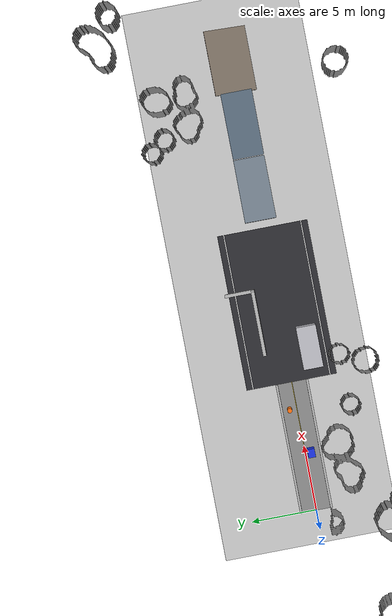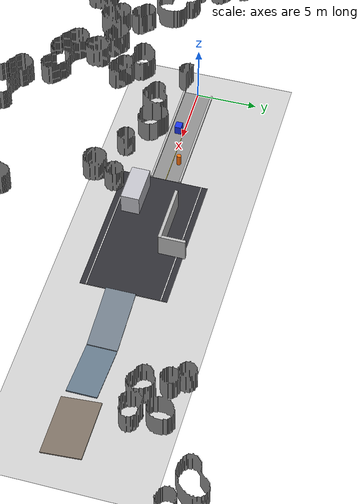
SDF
<sdf version="1.6">
 <world name="wheelchair_rc_scenarios">
  <include><uri>model://sun</uri></include>
  <include><uri>model://ground_plane</uri></include>
  <include><uri>model://hanyang_aegimun_occupancy_walls</uri></include>
  <physics name="deterministic_ode" type="ode">
   <max_step_size>0.001</max_step_size>
   <real_time_update_rate>1000</real_time_update_rate>
   <real_time_factor>1.0</real_time_factor>
   <ode><solver><type>quick</type><iters>100</iters><sor>1.0</sor></solver></ode>
  </physics>
  <model name="ground_truth_narrow_sidewalk">
   <static>true</static>
   <pose>5 0 0.025 0 0 0</pose>
   <link name="link">
    <collision name="collision"><geometry><box><size>10 2.2 0.05</size></box></geometry></collision>
    <visual name="visual">
     <geometry><box><size>10 2.2 0.05</size></box></geometry>
     <material><diffuse>0.55 0.55 0.55 1</diffuse></material>
    </visual>
   </link>
  </model>
  <model name="ground_truth_sidewalk_center_marking">
   <static>true</static>
   <pose>5 0 0.056 0 0 0</pose>
   <link name="link">
    <visual name="visual">
     <geometry><box><size>10 0.04 0.01</size></box></geometry>
     <material><diffuse>1 0.85 0.1 1</diffuse></material>
    </visual>
   </link>
  </model>
  <model name="ground_truth_curb_north">
   <static>true</static>
   <pose>5 1.18 0.10 0 0 0</pose>
   <link name="link">
    <collision name="collision"><geometry><box><size>10 0.16 0.20</size></box></geometry></collision>
    <visual name="visual"><geometry><box><size>10 0.16 0.20</size></box></geometry></visual>
   </link>
  </model>
  <model name="ground_truth_curb_south">
   <static>true</static>
   <pose>5 -1.18 0.10 0 0 0</pose>
   <link name="link">
    <collision name="collision"><geometry><box><size>10 0.16 0.20</size></box></geometry></collision>
    <visual name="visual"><geometry><box><size>10 0.16 0.20</size></box></geometry></visual>
   </link>
  </model>
  <model name="ground_truth_road_free_space">
   <static>true</static>
   <pose>16 0 0.015 0 0 0</pose>
   <link name="link">
    <collision name="collision"><geometry><box><size>12 7 0.03</size></box></geometry></collision>
    <visual name="visual">
     <geometry><box><size>12 7 0.03</size></box></geometry>
     <material><diffuse>0.18 0.18 0.20 1</diffuse></material>
    </visual>
   </link>
  </model>
  <model name="ground_truth_road_edge_north">
   <static>true</static>
   <pose>16 3.0 0.035 0 0 0</pose>
   <link name="link">
    <visual name="visual">
     <geometry><box><size>12 0.08 0.015</size></box></geometry>
     <material><diffuse>1 1 1 1</diffuse></material>
    </visual>
   </link>
  </model>
  <model name="ground_truth_road_edge_south">
   <static>true</static>
   <pose>16 -3.0 0.035 0 0 0</pose>
   <link name="link">
    <visual name="visual">
     <geometry><box><size>12 0.08 0.015</size></box></geometry>
     <material><diffuse>1 1 1 1</diffuse></material>
    </visual>
   </link>
  </model>
  <model name="ground_truth_ramp_uphill_10deg">
   <static>true</static>
   <pose>25 0 0.435 0 0.174533 0</pose>
   <link name="link">
    <collision name="collision"><geometry><box><size>5 2.4 0.10</size></box></geometry></collision>
    <visual name="visual">
     <geometry><box><size>5 2.4 0.10</size></box></geometry>
     <material><diffuse>0.45 0.50 0.55 1</diffuse></material>
    </visual>
   </link>
  </model>
  <model name="ground_truth_ramp_downhill_10deg">
   <static>true</static>
   <pose>30 0 0.435 0 -0.174533 0</pose>
   <link name="link">
    <collision name="collision"><geometry><box><size>5 2.4 0.10</size></box></geometry></collision>
    <visual name="visual">
     <geometry><box><size>5 2.4 0.10</size></box></geometry>
     <material><diffuse>0.40 0.48 0.55 1</diffuse></material>
    </visual>
   </link>
  </model>
  <model name="ground_truth_cross_slope_7deg">
   <static>true</static>
   <pose>35 0 0.20 0.122173 0 0</pose>
   <link name="link">
    <collision name="collision"><geometry><box><size>5 3.2 0.10</size></box></geometry></collision>
    <visual name="visual">
     <geometry><box><size>5 3.2 0.10</size></box></geometry>
     <material><diffuse>0.50 0.45 0.40 1</diffuse></material>
    </visual>
   </link>
  </model>
  <model name="ground_truth_static_obstacle_box">
   <static>true</static>
   <pose>4.5 -0.45 0.40 0 0 0</pose>
   <link name="link">
    <collision name="collision"><geometry><box><size>0.65 0.55 0.80</size></box></geometry></collision>
    <visual name="visual">
     <geometry><box><size>0.65 0.55 0.80</size></box></geometry>
     <material><diffuse>0.1 0.2 0.9 1</diffuse></material>
    </visual>
   </link>
   <plugin name="ground_truth_static_obstacle_pose" filename="libgazebo_ros_p3d.so">
    <bodyName>link</bodyName>
    <topicName>/simulation/ground_truth/static_obstacle</topicName>
    <frameName>world</frameName>
    <updateRate>10.0</updateRate>
    <gaussianNoise>0.0</gaussianNoise>
   </plugin>
  </model>
  <model name="ground_truth_static_obstacle_bollard">
   <static>true</static>
   <pose>8.0 0.55 0.50 0 0 0</pose>
   <link name="link">
    <collision name="collision">
     <geometry><cylinder><radius>0.18</radius><length>1.0</length></cylinder></geometry>
    </collision>
    <visual name="visual">
     <geometry><cylinder><radius>0.18</radius><length>1.0</length></cylinder></geometry>
     <material><diffuse>1 0.45 0.05 1</diffuse></material>
    </visual>
   </link>
  </model>
  <model name="ground_truth_blind_corner_wall_x">
   <static>true</static>
   <pose>15 1.6 1.0 0 0 0</pose>
   <link name="link">
    <collision name="collision"><geometry><box><size>5 0.25 2</size></box></geometry></collision>
    <visual name="visual"><geometry><box><size>5 0.25 2</size></box></geometry></visual>
   </link>
  </model>
  <model name="ground_truth_blind_corner_wall_y">
   <static>true</static>
   <pose>17.4 2.6 1.0 0 0 0</pose>
   <link name="link">
    <collision name="collision"><geometry><box><size>0.25 2.2 2</size></box></geometry></collision>
    <visual name="visual"><geometry><box><size>0.25 2.2 2</size></box></geometry></visual>
   </link>
  </model>
  <model name="ground_truth_occluder_parked_van">
   <static>true</static>
   <pose>12.5 -1.8 0.9 0 0 0</pose>
   <link name="link">
    <collision name="collision"><geometry><box><size>3.2 1.5 1.8</size></box></geometry></collision>
    <visual name="visual">
     <geometry><box><size>3.2 1.5 1.8</size></box></geometry>
     <material><diffuse>0.75 0.75 0.78 1</diffuse></material>
    </visual>
   </link>
  </model>
  <model name="ground_truth_geofence_sidewalk">
   <static>true</static>
   <pose>5 0 -0.02 0 0 0</pose>
   <link name="label">
    <visual name="visual">
     <transparency>0.95</transparency>
     <geometry><box><size>10 2.2 0.01</size></box></geometry>
    </visual>
   </link>
  </model>
  <model name="ground_truth_geofence_road_free_space">
   <static>true</static>
   <pose>16 0 -0.02 0 0 0</pose>
   <link name="label">
    <visual name="visual">
     <transparency>0.95</transparency>
     <geometry><box><size>12 7 0.01</size></box></geometry>
    </visual>
   </link>
  </model>
 </world>
</sdf>

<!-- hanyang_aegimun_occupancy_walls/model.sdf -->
<!-- Generated by scripts/generate_hanyang_gazebo_model.py; do not edit. -->
<!-- map_yaml_sha256=9f36ab2d3d35a667996570b45babb7cb3ba8bd1e706a971af22603da1220e7ff -->
<!-- map_pgm_sha256=c89d791f71fe3d1705ae04724acf8ff6ba0ccc351fc162fe996982f9469a0278 -->
<!-- dimensions=3220x2361 resolution=0.1 origin=[-60.1,-148.4,0] -->
<!-- occupied_value=0 free_value=254 unknown_value=205 source_occupied_points=16629 final_occupied_cells=210223 boundary_segments=32712 boundary_faces=65424 wall_height=2 -->
<sdf version="1.6">
  <model name="hanyang_aegimun_occupancy_walls">
    <static>true</static>
    <pose>0 0 0 0 0 0</pose>
    <link name="occupancy_walls">
      <pose>0 0 0 0 0 0</pose>
      <collision name="occupancy_walls_collision">
        <geometry><mesh><uri>model://hanyang_aegimun_occupancy_walls/meshes/occupancy_walls.obj</uri></mesh></geometry>
      </collision>
      <visual name="occupancy_walls_visual">
        <geometry><mesh><uri>model://hanyang_aegimun_occupancy_walls/meshes/occupancy_walls.obj</uri></mesh></geometry>
        <material><ambient>0.45 0.45 0.45 1</ambient><diffuse>0.55 0.55 0.55 1</diffuse></material>
      </visual>
    </link>
  </model>
</sdf>
